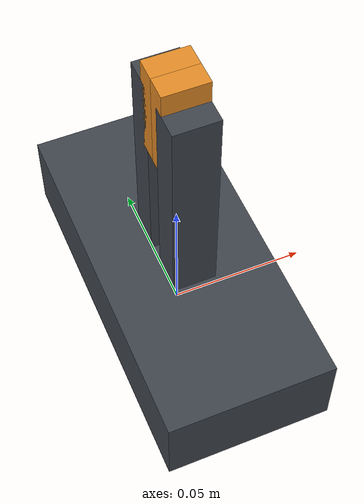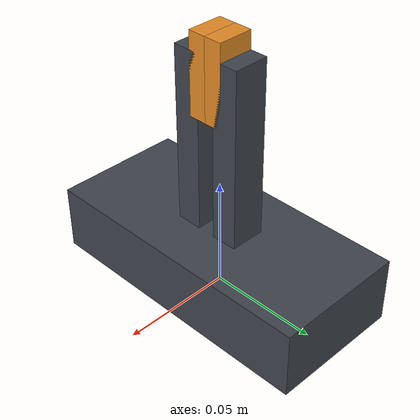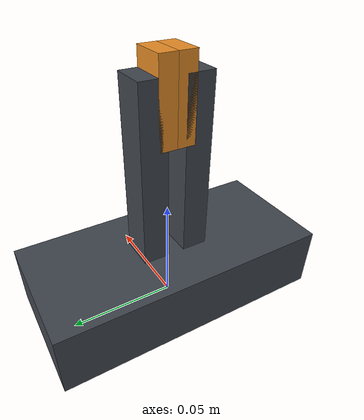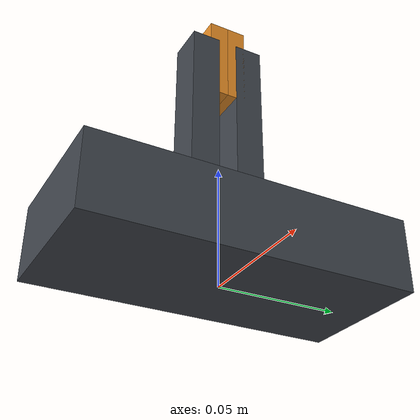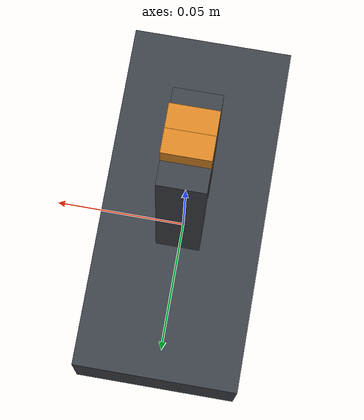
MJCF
<mujoco model="gripper">
  <compiler angle="radian" autolimits="true"/>

  <default>
    <default class="gripper">
      <geom contype="1" conaffinity="1" group="2" rgba=".25 .27 .3 1"/>
      <joint type="slide" range="0 0.04" damping="2" armature="0.01"/>
      <default class="gripper/pad">
        <geom type="box" size="0.008 0.004 0.018" friction="1.5 0.02 0.0001" condim="4" rgba=".9 .55 .15 1" priority="1"/>
      </default>
    </default>
  </default>

  <worldbody>
    <body name="hand" childclass="gripper">
      <geom name="palm" type="box" size="0.03 0.065 0.015" pos="0 0 0.015" mass="0.4"/>
      <site name="tcp" pos="0 0 0.1" size="0.008" rgba="1 .8 0 1" group="3"/>
      <camera name="wrist" pos="0.055 0 0.02" xyaxes="0 1 0 1 0 0" fovy="75"/>

      <body name="finger_left" pos="0 0 0.03">
        <joint name="finger_left" axis="0 1 0"/>
        <geom name="finger_left" type="box" size="0.008 0.006 0.04" pos="0 0.01 0.04" mass="0.05"/>
        <geom name="pad_left" class="gripper/pad" pos="0 0.004 0.07" mass="0.01"/>
      </body>

      <body name="finger_right" pos="0 0 0.03">
        <joint name="finger_right" axis="0 -1 0"/>
        <geom name="finger_right" type="box" size="0.008 0.006 0.04" pos="0 -0.01 0.04" mass="0.05"/>
        <geom name="pad_right" class="gripper/pad" pos="0 -0.004 0.07" mass="0.01"/>
      </body>
    </body>
  </worldbody>

  <contact>
    <!-- The pads touch when fully closed; that contact carries no information. -->
    <exclude body1="finger_left" body2="finger_right"/>
  </contact>

  <tendon>
    <fixed name="grip">
      <joint joint="finger_left" coef="0.5"/>
      <joint joint="finger_right" coef="0.5"/>
    </fixed>
  </tendon>

  <equality>
    <joint name="mirror" joint1="finger_left" joint2="finger_right" polycoef="0 1 0 0 0" solref="0.005 1"/>
  </equality>

  <actuator>
    <position name="grip" tendon="grip" kp="800" kv="20" ctrlrange="0 0.04" forcerange="-30 30"/>
  </actuator>

  <sensor>
    <tendonpos name="opening" tendon="grip"/>
    <actuatorfrc name="grip_force" actuator="grip"/>
  </sensor>
</mujoco>
